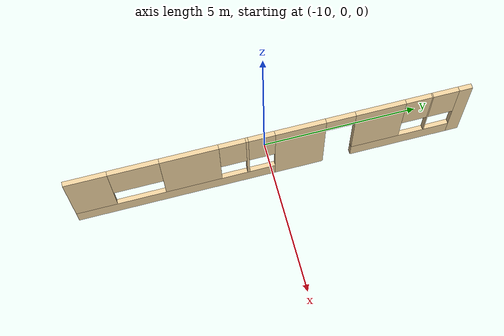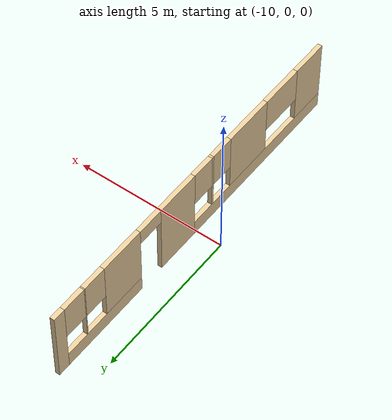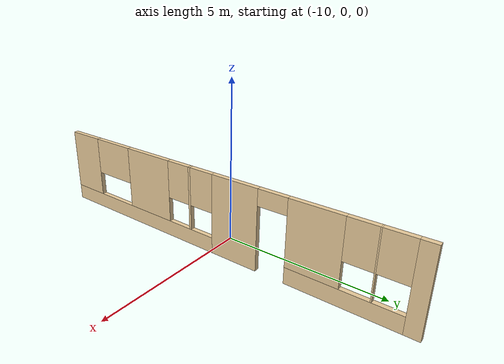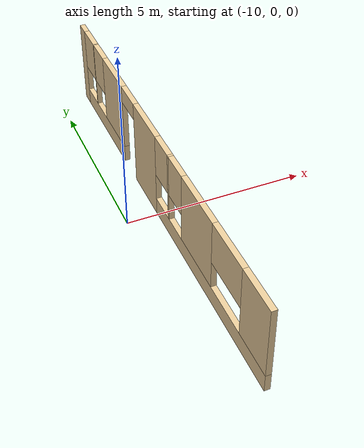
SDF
<sdf version="1.6">
 <model name="melgar_house">
  <link name="Wall_46">
   <pose>-9.07146 0 0 0 0 -1.5708</pose>
   <visual name="Wall_46_Visual_2">
    <pose>-4.10589 0 0.25 0 -0 0</pose>
    <geometry><box><size>3.17091 0.15 0.5</size></box></geometry>
    <material>
     <script><uri>file://media/materials/scripts/gazebo.material</uri><name>Gazebo/Grey</name></script>
     <ambient>0.921569 0.807843 0.615686 1</ambient>
     <shader type="pixel"/>
     <diffuse>0.7 0.7 0.7 1</diffuse>
     <specular>0.01 0.01 0.01 1</specular>
     <emissive>0 0 0 1</emissive>
    </material>
    <meta><layer>0</layer></meta>
   </visual>
   <visual name="Wall_46_Visual_8">
    <pose>2.46006 0 1.5 0 -0 0</pose>
    <geometry><box><size>1.74636 0.15 2</size></box></geometry>
    <material>
     <script><uri>file://media/materials/scripts/gazebo.material</uri><name>Gazebo/Grey</name></script>
     <ambient>0.921569 0.807843 0.615686 1</ambient>
     <shader type="pixel"/>
     <diffuse>0.7 0.7 0.7 1</diffuse>
     <specular>0.01 0.01 0.01 1</specular>
     <emissive>0 0 0 1</emissive>
    </material>
    <meta><layer>0</layer></meta>
   </visual>
   <visual name="Wall_46_Visual_0">
    <pose>-5.89567 0 1.25 0 -0 0</pose>
    <geometry><box><size>0.408655 0.15 2.5</size></box></geometry>
    <material>
     <script><uri>file://media/materials/scripts/gazebo.material</uri><name>Gazebo/Grey</name></script>
     <ambient>0.921569 0.807843 0.615686 1</ambient>
     <shader type="pixel"/>
     <diffuse>0.7 0.7 0.7 1</diffuse>
     <specular>0.01 0.01 0.01 1</specular>
     <emissive>0 0 0 1</emissive>
    </material>
    <meta><layer>0</layer></meta>
   </visual>
   <visual name="Wall_46_Visual_1">
    <pose>-0.853511 0 1.25 0 -0 0</pose>
    <geometry><box><size>1.53384 0.15 2.5</size></box></geometry>
    <material>
     <script><uri>file://media/materials/scripts/gazebo.material</uri><name>Gazebo/Grey</name></script>
     <ambient>0.921569 0.807843 0.615686 1</ambient>
     <shader type="pixel"/>
     <diffuse>0.7 0.7 0.7 1</diffuse>
     <specular>0.01 0.01 0.01 1</specular>
     <emissive>0 0 0 1</emissive>
    </material>
    <meta><layer>0</layer></meta>
   </visual>
   <visual name="Wall_46_Visual_3">
    <pose>3.0067 0 0.25 0 -0 0</pose>
    <geometry><box><size>6.18659 0.15 0.5</size></box></geometry>
    <material>
     <script><uri>file://media/materials/scripts/gazebo.material</uri><name>Gazebo/Grey</name></script>
     <ambient>0.921569 0.807843 0.615686 1</ambient>
     <shader type="pixel"/>
     <diffuse>0.7 0.7 0.7 1</diffuse>
     <specular>0.01 0.01 0.01 1</specular>
     <emissive>0 0 0 1</emissive>
    </material>
    <meta><layer>0</layer></meta>
   </visual>
   <visual name="Wall_46_Visual_4">
    <pose>-4.87281 0 1.5 0 -0 0</pose>
    <geometry><box><size>0.037074 0.15 2</size></box></geometry>
    <material>
     <script><uri>file://media/materials/scripts/gazebo.material</uri><name>Gazebo/Grey</name></script>
     <ambient>0.921569 0.807843 0.615686 1</ambient>
     <shader type="pixel"/>
     <diffuse>0.7 0.7 0.7 1</diffuse>
     <specular>0.01 0.01 0.01 1</specular>
     <emissive>0 0 0 1</emissive>
    </material>
    <meta><layer>0</layer></meta>
   </visual>
   <visual name="Wall_46_Visual_5">
    <pose>-3.28735 0 1.5 0 -0 0</pose>
    <geometry><box><size>1.53384 0.15 2</size></box></geometry>
    <material>
     <script><uri>file://media/materials/scripts/gazebo.material</uri><name>Gazebo/Grey</name></script>
     <ambient>0.921569 0.807843 0.615686 1</ambient>
     <shader type="pixel"/>
     <diffuse>0.7 0.7 0.7 1</diffuse>
     <specular>0.01 0.01 0.01 1</specular>
     <emissive>0 0 0 1</emissive>
    </material>
    <meta><layer>0</layer></meta>
   </visual>
   <visual name="Wall_46_Visual_6">
    <pose>-3.28735 0 1.5 0 -0 0</pose>
    <geometry><box><size>1.53384 0.15 2</size></box></geometry>
    <material>
     <script><uri>file://media/materials/scripts/gazebo.material</uri><name>Gazebo/Grey</name></script>
     <ambient>0.921569 0.807843 0.615686 1</ambient>
     <shader type="pixel"/>
     <diffuse>0.7 0.7 0.7 1</diffuse>
     <specular>0.01 0.01 0.01 1</specular>
     <emissive>0 0 0 1</emissive>
    </material>
    <meta><layer>0</layer></meta>
   </visual>
   <visual name="Wall_46_Visual_7">
    <pose>0.750143 0 1.5 0 -0 0</pose>
    <geometry><box><size>0.073468 0.15 2</size></box></geometry>
    <material>
     <script><uri>file://media/materials/scripts/gazebo.material</uri><name>Gazebo/Grey</name></script>
     <ambient>0.921569 0.807843 0.615686 1</ambient>
     <shader type="pixel"/>
     <diffuse>0.7 0.7 0.7 1</diffuse>
     <specular>0.01 0.01 0.01 1</specular>
     <emissive>0 0 0 1</emissive>
    </material>
    <meta><layer>0</layer></meta>
   </visual>
   <visual name="Wall_46_Visual_9">
    <pose>5.46662 0 1.5 0 -0 0</pose>
    <geometry><box><size>1.26676 0.15 2</size></box></geometry>
    <material>
     <script><uri>file://media/materials/scripts/gazebo.material</uri><name>Gazebo/Grey</name></script>
     <ambient>0.921569 0.807843 0.615686 1</ambient>
     <shader type="pixel"/>
     <diffuse>0.7 0.7 0.7 1</diffuse>
     <specular>0.01 0.01 0.01 1</specular>
     <emissive>0 0 0 1</emissive>
    </material>
    <meta><layer>0</layer></meta>
   </visual>
   <visual name="Wall_46_Visual_10">
    <pose>-5.29134 0 1.9 0 -0 0</pose>
    <geometry><box><size>0.8 0.15 1.2</size></box></geometry>
    <material>
     <script><uri>file://media/materials/scripts/gazebo.material</uri><name>Gazebo/Grey</name></script>
     <ambient>0.921569 0.807843 0.615686 1</ambient>
     <shader type="pixel"/>
     <diffuse>0.7 0.7 0.7 1</diffuse>
     <specular>0.01 0.01 0.01 1</specular>
     <emissive>0 0 0 1</emissive>
    </material>
    <meta><layer>0</layer></meta>
   </visual>
   <visual name="Wall_46_Visual_11">
    <pose>0.313408 0 1.9 0 -0 0</pose>
    <geometry><box><size>0.8 0.15 1.2</size></box></geometry>
    <material>
     <script><uri>file://media/materials/scripts/gazebo.material</uri><name>Gazebo/Grey</name></script>
     <ambient>0.921569 0.807843 0.615686 1</ambient>
     <shader type="pixel"/>
     <diffuse>0.7 0.7 0.7 1</diffuse>
     <specular>0.01 0.01 0.01 1</specular>
     <emissive>0 0 0 1</emissive>
    </material>
    <meta><layer>0</layer></meta>
   </visual>
   <visual name="Wall_46_Visual_12">
    <pose>-4.45427 0 1.9 0 -0 0</pose>
    <geometry><box><size>0.8 0.15 1.2</size></box></geometry>
    <material>
     <script><uri>file://media/materials/scripts/gazebo.material</uri><name>Gazebo/Grey</name></script>
     <ambient>0.921569 0.807843 0.615686 1</ambient>
     <shader type="pixel"/>
     <diffuse>0.7 0.7 0.7 1</diffuse>
     <specular>0.01 0.01 0.01 1</specular>
     <emissive>0 0 0 1</emissive>
    </material>
    <meta><layer>0</layer></meta>
   </visual>
   <visual name="Wall_46_Visual_13">
    <pose>1.18688 0 1.9 0 -0 0</pose>
    <geometry><box><size>0.8 0.15 1.2</size></box></geometry>
    <material>
     <script><uri>file://media/materials/scripts/gazebo.material</uri><name>Gazebo/Grey</name></script>
     <ambient>0.921569 0.807843 0.615686 1</ambient>
     <shader type="pixel"/>
     <diffuse>0.7 0.7 0.7 1</diffuse>
     <specular>0.01 0.01 0.01 1</specular>
     <emissive>0 0 0 1</emissive>
    </material>
    <meta><layer>0</layer></meta>
   </visual>
   <visual name="Wall_46_Visual_14">
    <pose>4.08324 0 1.9 0 -0 0</pose>
    <geometry><box><size>1.5 0.15 1.2</size></box></geometry>
    <material>
     <script><uri>file://media/materials/scripts/gazebo.material</uri><name>Gazebo/Grey</name></script>
     <ambient>0.921569 0.807843 0.615686 1</ambient>
     <shader type="pixel"/>
     <diffuse>0.7 0.7 0.7 1</diffuse>
     <specular>0.01 0.01 0.01 1</specular>
     <emissive>0 0 0 1</emissive>
    </material>
    <meta><layer>0</layer></meta>
   </visual>
   <visual name="Wall_46_Visual_15">
    <pose>-2.07043 0 2.25 0 -0 0</pose>
    <geometry><box><size>0.9 0.15 0.5</size></box></geometry>
    <material>
     <script><uri>file://media/materials/scripts/gazebo.material</uri><name>Gazebo/Grey</name></script>
     <ambient>0.921569 0.807843 0.615686 1</ambient>
     <shader type="pixel"/>
     <diffuse>0.7 0.7 0.7 1</diffuse>
     <specular>0.01 0.01 0.01 1</specular>
     <emissive>0 0 0 1</emissive>
    </material>
    <meta><layer>0</layer></meta>
   </visual>
   <visual name="Wall_46_Visual_16">
    <pose>-2.07043 0 2.25 0 -0 0</pose>
    <geometry><box><size>0.9 0.15 0.5</size></box></geometry>
    <material>
     <script><uri>file://media/materials/scripts/gazebo.material</uri><name>Gazebo/Grey</name></script>
     <ambient>0.921569 0.807843 0.615686 1</ambient>
     <shader type="pixel"/>
     <diffuse>0.7 0.7 0.7 1</diffuse>
     <specular>0.01 0.01 0.01 1</specular>
     <emissive>0 0 0 1</emissive>
    </material>
    <meta><layer>0</layer></meta>
   </visual>
   <collision name="Wall_46_Collision_0">
    <pose>-5.89567 0 1.25 0 -0 0</pose>
    <geometry><box><size>0.408655 0.15 2.5</size></box></geometry>
    <surface>
     <friction>
      <ode><mu>1</mu><mu2>1</mu2><fdir1>0 0 0</fdir1><slip1>0</slip1><slip2>0</slip2></ode>
      <torsional>
       <coefficient>1</coefficient>
       <patch_radius>0</patch_radius>
       <surface_radius>0</surface_radius>
       <use_patch_radius>1</use_patch_radius>
       <ode><slip>0</slip></ode>
      </torsional>
     </friction>
     <bounce><restitution_coefficient>0</restitution_coefficient><threshold>1e+06</threshold></bounce>
     <contact>
      <collide_without_contact>0</collide_without_contact>
      <collide_without_contact_bitmask>1</collide_without_contact_bitmask>
      <collide_bitmask>1</collide_bitmask>
      <ode>
       <soft_cfm>0</soft_cfm>
       <soft_erp>0.2</soft_erp>
       <kp>1e+13</kp>
       <kd>1</kd>
       <max_vel>0.01</max_vel>
       <min_depth>0</min_depth>
      </ode>
      <bullet>
       <split_impulse>1</split_impulse>
       <split_impulse_penetration_threshold>-0.01</split_impulse_penetration_threshold>
       <soft_cfm>0</soft_cfm>
       <soft_erp>0.2</soft_erp>
       <kp>1e+13</kp>
       <kd>1</kd>
      </bullet>
     </contact>
    </surface>
   </collision>
   <collision name="Wall_46_Collision_1">
    <pose>-0.853511 0 1.25 0 -0 0</pose>
    <geometry><box><size>1.53384 0.15 2.5</size></box></geometry>
    <surface>
     <friction>
      <ode><mu>1</mu><mu2>1</mu2><fdir1>0 0 0</fdir1><slip1>0</slip1><slip2>0</slip2></ode>
      <torsional>
       <coefficient>1</coefficient>
       <patch_radius>0</patch_radius>
       <surface_radius>0</surface_radius>
       <use_patch_radius>1</use_patch_radius>
       <ode><slip>0</slip></ode>
      </torsional>
     </friction>
     <bounce><restitution_coefficient>0</restitution_coefficient><threshold>1e+06</threshold></bounce>
     <contact>
      <collide_without_contact>0</collide_without_contact>
      <collide_without_contact_bitmask>1</collide_without_contact_bitmask>
      <collide_bitmask>1</collide_bitmask>
      <ode>
       <soft_cfm>0</soft_cfm>
       <soft_erp>0.2</soft_erp>
       <kp>1e+13</kp>
       <kd>1</kd>
       <max_vel>0.01</max_vel>
       <min_depth>0</min_depth>
      </ode>
      <bullet>
       <split_impulse>1</split_impulse>
       <split_impulse_penetration_threshold>-0.01</split_impulse_penetration_threshold>
       <soft_cfm>0</soft_cfm>
       <soft_erp>0.2</soft_erp>
       <kp>1e+13</kp>
       <kd>1</kd>
      </bullet>
     </contact>
    </surface>
   </collision>
   <collision name="Wall_46_Collision_2">
    <pose>-4.10589 0 0.25 0 -0 0</pose>
    <geometry><box><size>3.17091 0.15 0.5</size></box></geometry>
    <surface>
     <friction>
      <ode><mu>1</mu><mu2>1</mu2><fdir1>0 0 0</fdir1><slip1>0</slip1><slip2>0</slip2></ode>
      <torsional>
       <coefficient>1</coefficient>
       <patch_radius>0</patch_radius>
       <surface_radius>0</surface_radius>
       <use_patch_radius>1</use_patch_radius>
       <ode><slip>0</slip></ode>
      </torsional>
     </friction>
     <bounce><restitution_coefficient>0</restitution_coefficient><threshold>1e+06</threshold></bounce>
     <contact>
      <collide_without_contact>0</collide_without_contact>
      <collide_without_contact_bitmask>1</collide_without_contact_bitmask>
      <collide_bitmask>1</collide_bitmask>
      <ode>
       <soft_cfm>0</soft_cfm>
       <soft_erp>0.2</soft_erp>
       <kp>1e+13</kp>
       <kd>1</kd>
       <max_vel>0.01</max_vel>
       <min_depth>0</min_depth>
      </ode>
      <bullet>
       <split_impulse>1</split_impulse>
       <split_impulse_penetration_threshold>-0.01</split_impulse_penetration_threshold>
       <soft_cfm>0</soft_cfm>
       <soft_erp>0.2</soft_erp>
       <kp>1e+13</kp>
       <kd>1</kd>
      </bullet>
     </contact>
    </surface>
   </collision>
   <collision name="Wall_46_Collision_3">
    <pose>3.0067 0 0.25 0 -0 0</pose>
    <geometry><box><size>6.18659 0.15 0.5</size></box></geometry>
    <surface>
     <friction>
      <ode><mu>1</mu><mu2>1</mu2><fdir1>0 0 0</fdir1><slip1>0</slip1><slip2>0</slip2></ode>
      <torsional>
       <coefficient>1</coefficient>
       <patch_radius>0</patch_radius>
       <surface_radius>0</surface_radius>
       <use_patch_radius>1</use_patch_radius>
       <ode><slip>0</slip></ode>
      </torsional>
     </friction>
     <bounce><restitution_coefficient>0</restitution_coefficient><threshold>1e+06</threshold></bounce>
     <contact>
      <collide_without_contact>0</collide_without_contact>
      <collide_without_contact_bitmask>1</collide_without_contact_bitmask>
      <collide_bitmask>1</collide_bitmask>
      <ode>
       <soft_cfm>0</soft_cfm>
       <soft_erp>0.2</soft_erp>
       <kp>1e+13</kp>
       <kd>1</kd>
       <max_vel>0.01</max_vel>
       <min_depth>0</min_depth>
      </ode>
      <bullet>
       <split_impulse>1</split_impulse>
       <split_impulse_penetration_threshold>-0.01</split_impulse_penetration_threshold>
       <soft_cfm>0</soft_cfm>
       <soft_erp>0.2</soft_erp>
       <kp>1e+13</kp>
       <kd>1</kd>
      </bullet>
     </contact>
    </surface>
   </collision>
   <collision name="Wall_46_Collision_5">
    <pose>-3.28735 0 1.5 0 -0 0</pose>
    <geometry><box><size>1.53384 0.15 2</size></box></geometry>
    <surface>
     <friction>
      <ode><mu>1</mu><mu2>1</mu2><fdir1>0 0 0</fdir1><slip1>0</slip1><slip2>0</slip2></ode>
      <torsional>
       <coefficient>1</coefficient>
       <patch_radius>0</patch_radius>
       <surface_radius>0</surface_radius>
       <use_patch_radius>1</use_patch_radius>
       <ode><slip>0</slip></ode>
      </torsional>
     </friction>
     <bounce><restitution_coefficient>0</restitution_coefficient><threshold>1e+06</threshold></bounce>
     <contact>
      <collide_without_contact>0</collide_without_contact>
      <collide_without_contact_bitmask>1</collide_without_contact_bitmask>
      <collide_bitmask>1</collide_bitmask>
      <ode>
       <soft_cfm>0</soft_cfm>
       <soft_erp>0.2</soft_erp>
       <kp>1e+13</kp>
       <kd>1</kd>
       <max_vel>0.01</max_vel>
       <min_depth>0</min_depth>
      </ode>
      <bullet>
       <split_impulse>1</split_impulse>
       <split_impulse_penetration_threshold>-0.01</split_impulse_penetration_threshold>
       <soft_cfm>0</soft_cfm>
       <soft_erp>0.2</soft_erp>
       <kp>1e+13</kp>
       <kd>1</kd>
      </bullet>
     </contact>
    </surface>
   </collision>
   <collision name="Wall_46_Collision_4">
    <pose>-4.87281 0 1.5 0 -0 0</pose>
    <geometry><box><size>0.037074 0.15 2</size></box></geometry>
    <surface>
     <friction>
      <ode><mu>1</mu><mu2>1</mu2><fdir1>0 0 0</fdir1><slip1>0</slip1><slip2>0</slip2></ode>
      <torsional>
       <coefficient>1</coefficient>
       <patch_radius>0</patch_radius>
       <surface_radius>0</surface_radius>
       <use_patch_radius>1</use_patch_radius>
       <ode><slip>0</slip></ode>
      </torsional>
     </friction>
     <bounce><restitution_coefficient>0</restitution_coefficient><threshold>1e+06</threshold></bounce>
     <contact>
      <collide_without_contact>0</collide_without_contact>
      <collide_without_contact_bitmask>1</collide_without_contact_bitmask>
      <collide_bitmask>1</collide_bitmask>
      <ode>
       <soft_cfm>0</soft_cfm>
       <soft_erp>0.2</soft_erp>
       <kp>1e+13</kp>
       <kd>1</kd>
       <max_vel>0.01</max_vel>
       <min_depth>0</min_depth>
      </ode>
      <bullet>
       <split_impulse>1</split_impulse>
       <split_impulse_penetration_threshold>-0.01</split_impulse_penetration_threshold>
       <soft_cfm>0</soft_cfm>
       <soft_erp>0.2</soft_erp>
       <kp>1e+13</kp>
       <kd>1</kd>
      </bullet>
     </contact>
    </surface>
   </collision>
   <collision name="Wall_46_Collision_6">
    <pose>-3.28735 0 1.5 0 -0 0</pose>
    <geometry><box><size>1.53384 0.15 2</size></box></geometry>
    <surface>
     <friction>
      <ode><mu>1</mu><mu2>1</mu2><fdir1>0 0 0</fdir1><slip1>0</slip1><slip2>0</slip2></ode>
      <torsional>
       <coefficient>1</coefficient>
       <patch_radius>0</patch_radius>
       <surface_radius>0</surface_radius>
       <use_patch_radius>1</use_patch_radius>
       <ode><slip>0</slip></ode>
      </torsional>
     </friction>
     <bounce><restitution_coefficient>0</restitution_coefficient><threshold>1e+06</threshold></bounce>
     <contact>
      <collide_without_contact>0</collide_without_contact>
      <collide_without_contact_bitmask>1</collide_without_contact_bitmask>
      <collide_bitmask>1</collide_bitmask>
      <ode>
       <soft_cfm>0</soft_cfm>
       <soft_erp>0.2</soft_erp>
       <kp>1e+13</kp>
       <kd>1</kd>
       <max_vel>0.01</max_vel>
       <min_depth>0</min_depth>
      </ode>
      <bullet>
       <split_impulse>1</split_impulse>
       <split_impulse_penetration_threshold>-0.01</split_impulse_penetration_threshold>
       <soft_cfm>0</soft_cfm>
       <soft_erp>0.2</soft_erp>
       <kp>1e+13</kp>
       <kd>1</kd>
      </bullet>
     </contact>
    </surface>
   </collision>
   <collision name="Wall_46_Collision_9">
    <pose>5.46662 0 1.5 0 -0 0</pose>
    <geometry><box><size>1.26676 0.15 2</size></box></geometry>
    <surface>
     <friction>
      <ode><mu>1</mu><mu2>1</mu2><fdir1>0 0 0</fdir1><slip1>0</slip1><slip2>0</slip2></ode>
      <torsional>
       <coefficient>1</coefficient>
       <patch_radius>0</patch_radius>
       <surface_radius>0</surface_radius>
       <use_patch_radius>1</use_patch_radius>
       <ode><slip>0</slip></ode>
      </torsional>
     </friction>
     <bounce><restitution_coefficient>0</restitution_coefficient><threshold>1e+06</threshold></bounce>
     <contact>
      <collide_without_contact>0</collide_without_contact>
      <collide_without_contact_bitmask>1</collide_without_contact_bitmask>
      <collide_bitmask>1</collide_bitmask>
      <ode>
       <soft_cfm>0</soft_cfm>
       <soft_erp>0.2</soft_erp>
       <kp>1e+13</kp>
       <kd>1</kd>
       <max_vel>0.01</max_vel>
       <min_depth>0</min_depth>
      </ode>
      <bullet>
       <split_impulse>1</split_impulse>
       <split_impulse_penetration_threshold>-0.01</split_impulse_penetration_threshold>
       <soft_cfm>0</soft_cfm>
       <soft_erp>0.2</soft_erp>
       <kp>1e+13</kp>
       <kd>1</kd>
      </bullet>
     </contact>
    </surface>
   </collision>
   <collision name="Wall_46_Collision_7">
    <pose>0.750143 0 1.5 0 -0 0</pose>
    <geometry><box><size>0.073468 0.15 2</size></box></geometry>
    <surface>
     <friction>
      <ode><mu>1</mu><mu2>1</mu2><fdir1>0 0 0</fdir1><slip1>0</slip1><slip2>0</slip2></ode>
      <torsional>
       <coefficient>1</coefficient>
       <patch_radius>0</patch_radius>
       <surface_radius>0</surface_radius>
       <use_patch_radius>1</use_patch_radius>
       <ode><slip>0</slip></ode>
      </torsional>
     </friction>
     <bounce><restitution_coefficient>0</restitution_coefficient><threshold>1e+06</threshold></bounce>
     <contact>
      <collide_without_contact>0</collide_without_contact>
      <collide_without_contact_bitmask>1</collide_without_contact_bitmask>
      <collide_bitmask>1</collide_bitmask>
      <ode>
       <soft_cfm>0</soft_cfm>
       <soft_erp>0.2</soft_erp>
       <kp>1e+13</kp>
       <kd>1</kd>
       <max_vel>0.01</max_vel>
       <min_depth>0</min_depth>
      </ode>
      <bullet>
       <split_impulse>1</split_impulse>
       <split_impulse_penetration_threshold>-0.01</split_impulse_penetration_threshold>
       <soft_cfm>0</soft_cfm>
       <soft_erp>0.2</soft_erp>
       <kp>1e+13</kp>
       <kd>1</kd>
      </bullet>
     </contact>
    </surface>
   </collision>
   <collision name="Wall_46_Collision_8">
    <pose>2.46006 0 1.5 0 -0 0</pose>
    <geometry><box><size>1.74636 0.15 2</size></box></geometry>
    <surface>
     <friction>
      <ode><mu>1</mu><mu2>1</mu2><fdir1>0 0 0</fdir1><slip1>0</slip1><slip2>0</slip2></ode>
      <torsional>
       <coefficient>1</coefficient>
       <patch_radius>0</patch_radius>
       <surface_radius>0</surface_radius>
       <use_patch_radius>1</use_patch_radius>
       <ode><slip>0</slip></ode>
      </torsional>
     </friction>
     <bounce><restitution_coefficient>0</restitution_coefficient><threshold>1e+06</threshold></bounce>
     <contact>
      <collide_without_contact>0</collide_without_contact>
      <collide_without_contact_bitmask>1</collide_without_contact_bitmask>
      <collide_bitmask>1</collide_bitmask>
      <ode>
       <soft_cfm>0</soft_cfm>
       <soft_erp>0.2</soft_erp>
       <kp>1e+13</kp>
       <kd>1</kd>
       <max_vel>0.01</max_vel>
       <min_depth>0</min_depth>
      </ode>
      <bullet>
       <split_impulse>1</split_impulse>
       <split_impulse_penetration_threshold>-0.01</split_impulse_penetration_threshold>
       <soft_cfm>0</soft_cfm>
       <soft_erp>0.2</soft_erp>
       <kp>1e+13</kp>
       <kd>1</kd>
      </bullet>
     </contact>
    </surface>
   </collision>
   <collision name="Wall_46_Collision_10">
    <pose>-5.29134 0 1.9 0 -0 0</pose>
    <geometry><box><size>0.8 0.15 1.2</size></box></geometry>
    <surface>
     <friction>
      <ode><mu>1</mu><mu2>1</mu2><fdir1>0 0 0</fdir1><slip1>0</slip1><slip2>0</slip2></ode>
      <torsional>
       <coefficient>1</coefficient>
       <patch_radius>0</patch_radius>
       <surface_radius>0</surface_radius>
       <use_patch_radius>1</use_patch_radius>
       <ode><slip>0</slip></ode>
      </torsional>
     </friction>
     <bounce><restitution_coefficient>0</restitution_coefficient><threshold>1e+06</threshold></bounce>
     <contact>
      <collide_without_contact>0</collide_without_contact>
      <collide_without_contact_bitmask>1</collide_without_contact_bitmask>
      <collide_bitmask>1</collide_bitmask>
      <ode>
       <soft_cfm>0</soft_cfm>
       <soft_erp>0.2</soft_erp>
       <kp>1e+13</kp>
       <kd>1</kd>
       <max_vel>0.01</max_vel>
       <min_depth>0</min_depth>
      </ode>
      <bullet>
       <split_impulse>1</split_impulse>
       <split_impulse_penetration_threshold>-0.01</split_impulse_penetration_threshold>
       <soft_cfm>0</soft_cfm>
       <soft_erp>0.2</soft_erp>
       <kp>1e+13</kp>
       <kd>1</kd>
      </bullet>
     </contact>
    </surface>
   </collision>
   <collision name="Wall_46_Collision_11">
    <pose>0.313408 0 1.9 0 -0 0</pose>
    <geometry><box><size>0.8 0.15 1.2</size></box></geometry>
    <surface>
     <friction>
      <ode><mu>1</mu><mu2>1</mu2><fdir1>0 0 0</fdir1><slip1>0</slip1><slip2>0</slip2></ode>
      <torsional>
       <coefficient>1</coefficient>
       <patch_radius>0</patch_radius>
       <surface_radius>0</surface_radius>
       <use_patch_radius>1</use_patch_radius>
       <ode><slip>0</slip></ode>
      </torsional>
     </friction>
     <bounce><restitution_coefficient>0</restitution_coefficient><threshold>1e+06</threshold></bounce>
     <contact>
      <collide_without_contact>0</collide_without_contact>
      <collide_without_contact_bitmask>1</collide_without_contact_bitmask>
      <collide_bitmask>1</collide_bitmask>
      <ode>
       <soft_cfm>0</soft_cfm>
       <soft_erp>0.2</soft_erp>
       <kp>1e+13</kp>
       <kd>1</kd>
       <max_vel>0.01</max_vel>
       <min_depth>0</min_depth>
      </ode>
      <bullet>
       <split_impulse>1</split_impulse>
       <split_impulse_penetration_threshold>-0.01</split_impulse_penetration_threshold>
       <soft_cfm>0</soft_cfm>
       <soft_erp>0.2</soft_erp>
       <kp>1e+13</kp>
       <kd>1</kd>
      </bullet>
     </contact>
    </surface>
   </collision>
   <collision name="Wall_46_Collision_12">
    <pose>-4.45427 0 1.9 0 -0 0</pose>
    <geometry><box><size>0.8 0.15 1.2</size></box></geometry>
    <surface>
     <friction>
      <ode><mu>1</mu><mu2>1</mu2><fdir1>0 0 0</fdir1><slip1>0</slip1><slip2>0</slip2></ode>
      <torsional>
       <coefficient>1</coefficient>
       <patch_radius>0</patch_radius>
       <surface_radius>0</surface_radius>
       <use_patch_radius>1</use_patch_radius>
       <ode><slip>0</slip></ode>
      </torsional>
     </friction>
     <bounce><restitution_coefficient>0</restitution_coefficient><threshold>1e+06</threshold></bounce>
     <contact>
      <collide_without_contact>0</collide_without_contact>
      <collide_without_contact_bitmask>1</collide_without_contact_bitmask>
      <collide_bitmask>1</collide_bitmask>
      <ode>
       <soft_cfm>0</soft_cfm>
       <soft_erp>0.2</soft_erp>
       <kp>1e+13</kp>
       <kd>1</kd>
       <max_vel>0.01</max_vel>
       <min_depth>0</min_depth>
      </ode>
      <bullet>
       <split_impulse>1</split_impulse>
       <split_impulse_penetration_threshold>-0.01</split_impulse_penetration_threshold>
       <soft_cfm>0</soft_cfm>
       <soft_erp>0.2</soft_erp>
       <kp>1e+13</kp>
       <kd>1</kd>
      </bullet>
     </contact>
    </surface>
   </collision>
   <collision name="Wall_46_Collision_13">
    <pose>1.18688 0 1.9 0 -0 0</pose>
    <geometry><box><size>0.8 0.15 1.2</size></box></geometry>
    <surface>
     <friction>
      <ode><mu>1</mu><mu2>1</mu2><fdir1>0 0 0</fdir1><slip1>0</slip1><slip2>0</slip2></ode>
      <torsional>
       <coefficient>1</coefficient>
       <patch_radius>0</patch_radius>
       <surface_radius>0</surface_radius>
       <use_patch_radius>1</use_patch_radius>
       <ode><slip>0</slip></ode>
      </torsional>
     </friction>
     <bounce><restitution_coefficient>0</restitution_coefficient><threshold>1e+06</threshold></bounce>
     <contact>
      <collide_without_contact>0</collide_without_contact>
      <collide_without_contact_bitmask>1</collide_without_contact_bitmask>
      <collide_bitmask>1</collide_bitmask>
      <ode>
       <soft_cfm>0</soft_cfm>
       <soft_erp>0.2</soft_erp>
       <kp>1e+13</kp>
       <kd>1</kd>
       <max_vel>0.01</max_vel>
       <min_depth>0</min_depth>
      </ode>
      <bullet>
       <split_impulse>1</split_impulse>
       <split_impulse_penetration_threshold>-0.01</split_impulse_penetration_threshold>
       <soft_cfm>0</soft_cfm>
       <soft_erp>0.2</soft_erp>
       <kp>1e+13</kp>
       <kd>1</kd>
      </bullet>
     </contact>
    </surface>
   </collision>
   <collision name="Wall_46_Collision_14">
    <pose>4.08324 0 1.9 0 -0 0</pose>
    <geometry><box><size>1.5 0.15 1.2</size></box></geometry>
    <surface>
     <friction>
      <ode><mu>1</mu><mu2>1</mu2><fdir1>0 0 0</fdir1><slip1>0</slip1><slip2>0</slip2></ode>
      <torsional>
       <coefficient>1</coefficient>
       <patch_radius>0</patch_radius>
       <surface_radius>0</surface_radius>
       <use_patch_radius>1</use_patch_radius>
       <ode><slip>0</slip></ode>
      </torsional>
     </friction>
     <bounce><restitution_coefficient>0</restitution_coefficient><threshold>1e+06</threshold></bounce>
     <contact>
      <collide_without_contact>0</collide_without_contact>
      <collide_without_contact_bitmask>1</collide_without_contact_bitmask>
      <collide_bitmask>1</collide_bitmask>
      <ode>
       <soft_cfm>0</soft_cfm>
       <soft_erp>0.2</soft_erp>
       <kp>1e+13</kp>
       <kd>1</kd>
       <max_vel>0.01</max_vel>
       <min_depth>0</min_depth>
      </ode>
      <bullet>
       <split_impulse>1</split_impulse>
       <split_impulse_penetration_threshold>-0.01</split_impulse_penetration_threshold>
       <soft_cfm>0</soft_cfm>
       <soft_erp>0.2</soft_erp>
       <kp>1e+13</kp>
       <kd>1</kd>
      </bullet>
     </contact>
    </surface>
   </collision>
   <collision name="Wall_46_Collision_15">
    <pose>-2.07043 0 2.25 0 -0 0</pose>
    <geometry><box><size>0.9 0.15 0.5</size></box></geometry>
    <surface>
     <friction>
      <ode><mu>1</mu><mu2>1</mu2><fdir1>0 0 0</fdir1><slip1>0</slip1><slip2>0</slip2></ode>
      <torsional>
       <coefficient>1</coefficient>
       <patch_radius>0</patch_radius>
       <surface_radius>0</surface_radius>
       <use_patch_radius>1</use_patch_radius>
       <ode><slip>0</slip></ode>
      </torsional>
     </friction>
     <bounce><restitution_coefficient>0</restitution_coefficient><threshold>1e+06</threshold></bounce>
     <contact>
      <collide_without_contact>0</collide_without_contact>
      <collide_without_contact_bitmask>1</collide_without_contact_bitmask>
      <collide_bitmask>1</collide_bitmask>
      <ode>
       <soft_cfm>0</soft_cfm>
       <soft_erp>0.2</soft_erp>
       <kp>1e+13</kp>
       <kd>1</kd>
       <max_vel>0.01</max_vel>
       <min_depth>0</min_depth>
      </ode>
      <bullet>
       <split_impulse>1</split_impulse>
       <split_impulse_penetration_threshold>-0.01</split_impulse_penetration_threshold>
       <soft_cfm>0</soft_cfm>
       <soft_erp>0.2</soft_erp>
       <kp>1e+13</kp>
       <kd>1</kd>
      </bullet>
     </contact>
    </surface>
   </collision>
   <collision name="Wall_46_Collision_16">
    <pose>-2.07043 0 2.25 0 -0 0</pose>
    <geometry><box><size>0.9 0.15 0.5</size></box></geometry>
    <surface>
     <friction>
      <ode><mu>1</mu><mu2>1</mu2><fdir1>0 0 0</fdir1><slip1>0</slip1><slip2>0</slip2></ode>
      <torsional>
       <coefficient>1</coefficient>
       <patch_radius>0</patch_radius>
       <surface_radius>0</surface_radius>
       <use_patch_radius>1</use_patch_radius>
       <ode><slip>0</slip></ode>
      </torsional>
     </friction>
     <bounce><restitution_coefficient>0</restitution_coefficient><threshold>1e+06</threshold></bounce>
     <contact>
      <collide_without_contact>0</collide_without_contact>
      <collide_without_contact_bitmask>1</collide_without_contact_bitmask>
      <collide_bitmask>1</collide_bitmask>
      <ode>
       <soft_cfm>0</soft_cfm>
       <soft_erp>0.2</soft_erp>
       <kp>1e+13</kp>
       <kd>1</kd>
       <max_vel>0.01</max_vel>
       <min_depth>0</min_depth>
      </ode>
      <bullet>
       <split_impulse>1</split_impulse>
       <split_impulse_penetration_threshold>-0.01</split_impulse_penetration_threshold>
       <soft_cfm>0</soft_cfm>
       <soft_erp>0.2</soft_erp>
       <kp>1e+13</kp>
       <kd>1</kd>
      </bullet>
     </contact>
    </surface>
   </collision>
  </link>
  <static>1</static>
 </model>
</sdf>
